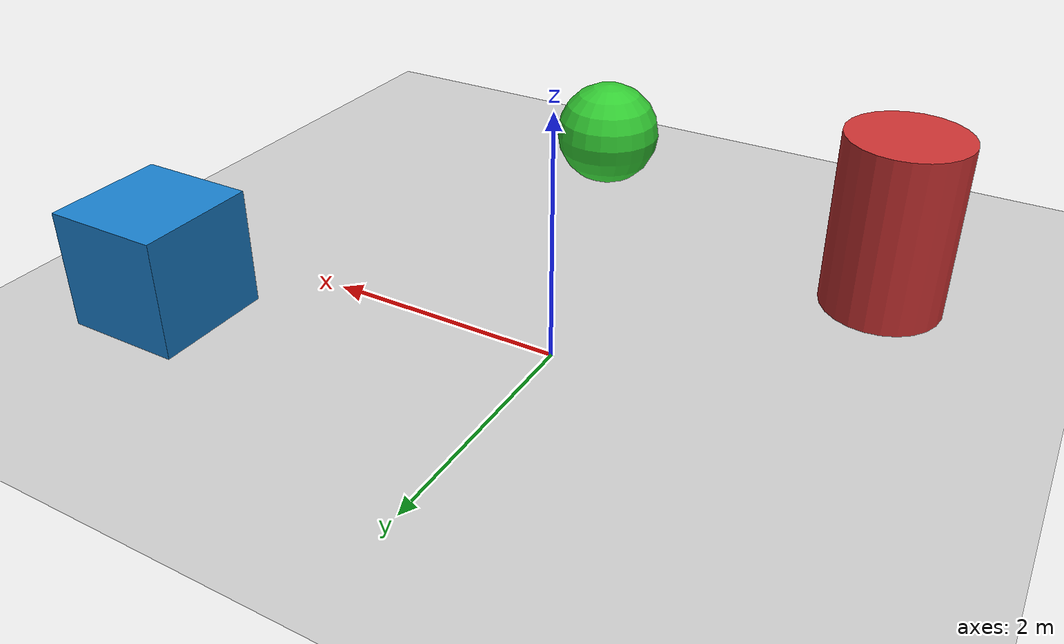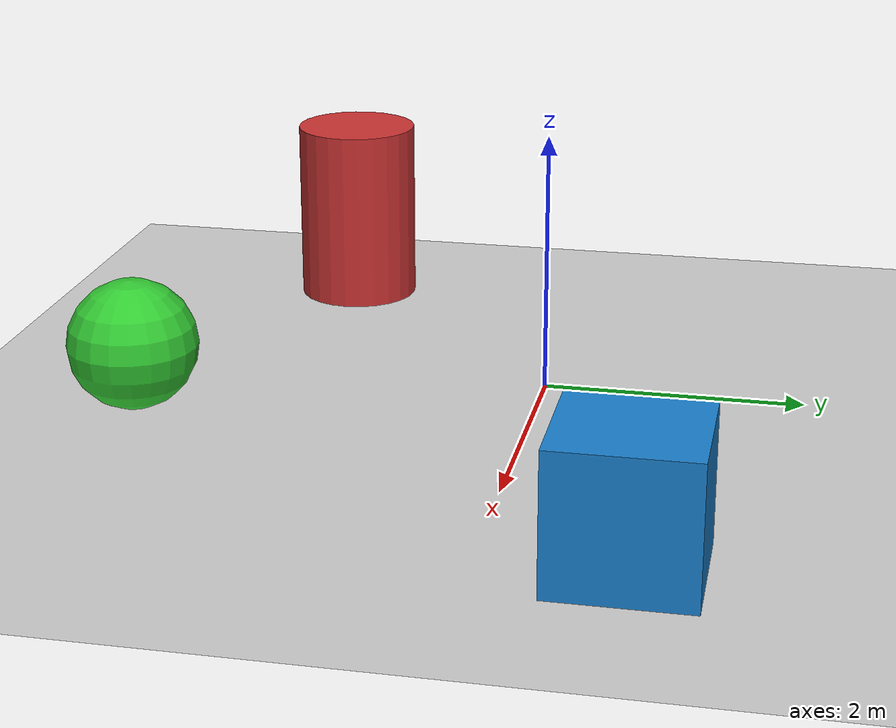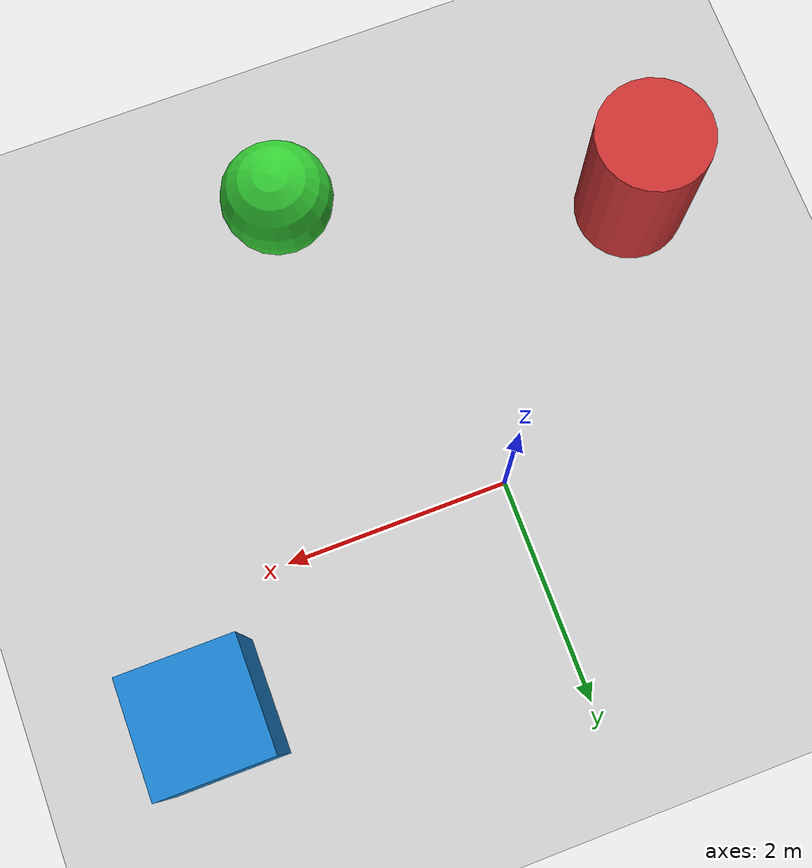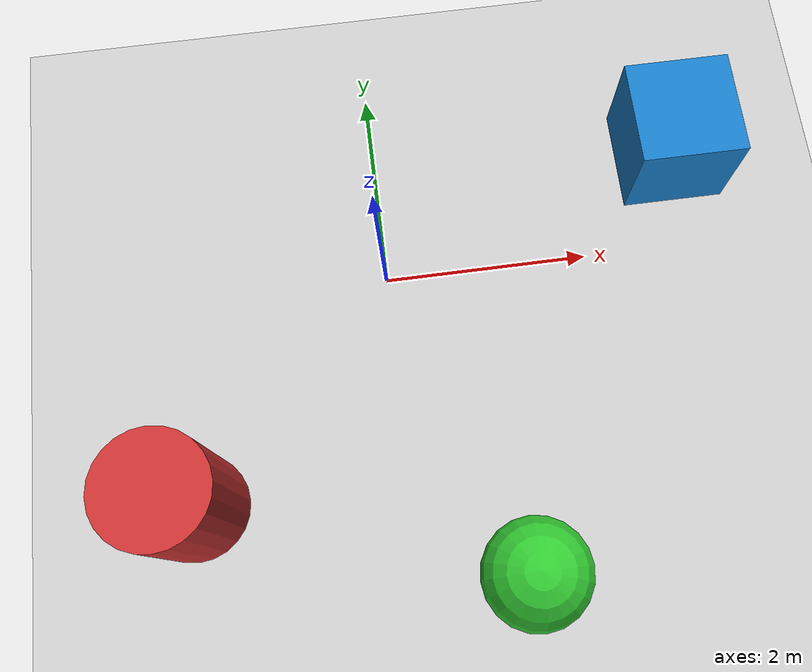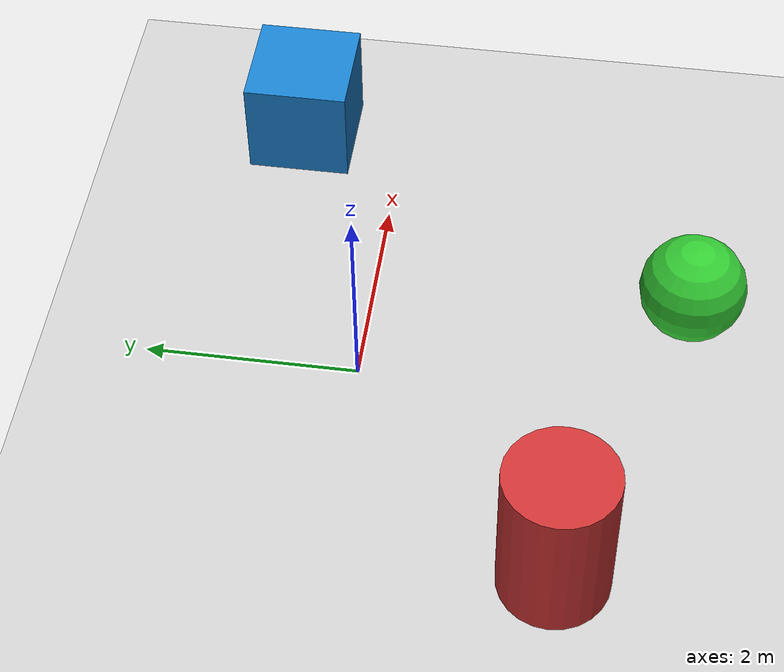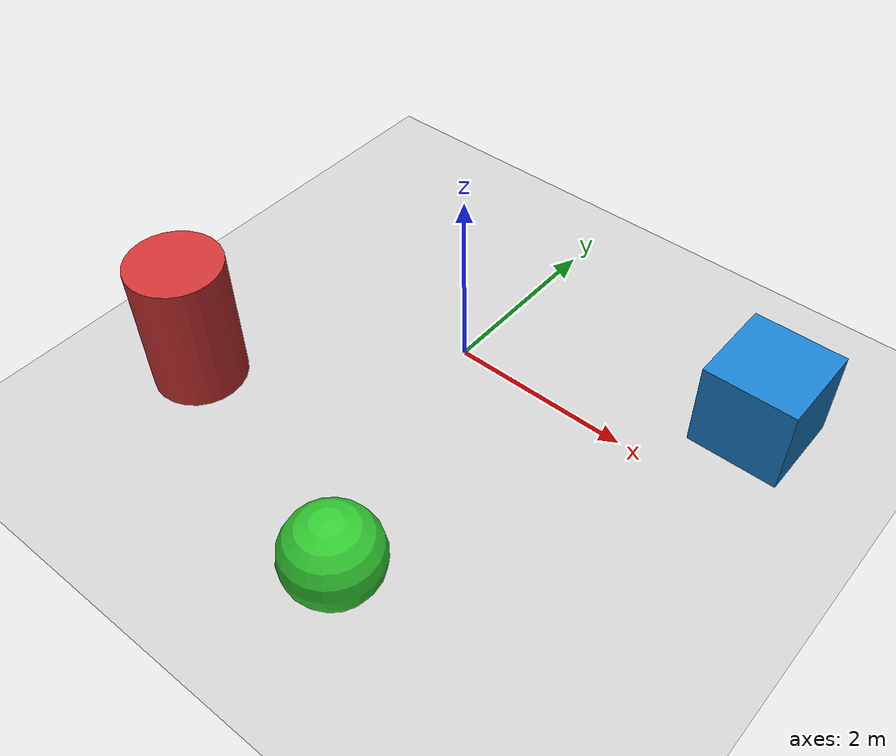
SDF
<?xml version="1.0" ?>
<sdf version="1.8">
  <world name="testing_world">
    <!-- Physics Plugin -->
    <plugin
      filename="gz-sim-physics-system"
      name="gz::sim::systems::Physics">
    </plugin>
    <!-- User Commands Plugin -->
    <plugin
      filename="gz-sim-user-commands-system"
      name="gz::sim::systems::UserCommands">
    </plugin>
    <!-- Scene Broadcaster Plugin -->
    <plugin
      filename="gz-sim-scene-broadcaster-system"
      name="gz::sim::systems::SceneBroadcaster">
    </plugin>

    <!-- Global light source -->
    <light type="directional" name="sun">
      <cast_shadows>true</cast_shadows>
      <pose>0 0 10 0 0 0</pose>
      <diffuse>0.8 0.8 0.8 1</diffuse>
      <specular>0.2 0.2 0.2 1</specular>
      <attenuation>
        <range>1000</range>
        <constant>0.9</constant>
        <linear>0.01</linear>
        <quadratic>0.001</quadratic>
      </attenuation>
      <direction>-0.5 0.1 -0.9</direction>
    </light>

    <!-- Ground Plane -->
    <model name="ground_plane">
      <static>true</static>
      <link name="link">
        <collision name="collision">
          <geometry>
            <plane>
              <normal>0 0 1</normal>
              <size>100 100</size>
            </plane>
          </geometry>
          <surface>
            <friction>
              <ode>
                <mu>100</mu>
                <mu2>50</mu2>
              </ode>
            </friction>
          </surface>
        </collision>
        <visual name="visual">
          <geometry>
            <plane>
              <normal>0 0 1</normal>
              <size>100 100</size>
            </plane>
          </geometry>
          <material>
            <ambient>0.8 0.8 0.8 1</ambient>
            <diffuse>0.8 0.8 0.8 1</diffuse>
            <specular>0.8 0.8 0.8 1</specular>
          </material>
        </visual>
      </link>
    </model>

    <!-- Obstacle 1: Box -->
    <model name="box_obstacle_1">
      <pose>3.0 1.0 0.5 0 0 0</pose>
      <static>true</static>
      <link name="link">
        <collision name="collision">
          <geometry>
            <box>
              <size>1.0 1.0 1.0</size>
            </box>
          </geometry>
        </collision>
        <visual name="visual">
          <geometry>
            <box>
              <size>1.0 1.0 1.0</size>
            </box>
          </geometry>
          <material>
            <ambient>0.1 0.5 0.8 1</ambient>
            <diffuse>0.1 0.5 0.8 1</diffuse>
            <specular>0.5 0.5 0.5 1</specular>
          </material>
        </visual>
      </link>
    </model>

    <!-- Obstacle 2: Cylinder -->
    <model name="cylinder_obstacle_1">
      <pose>-2.0 -2.0 0.75 0 0 0</pose>
      <static>true</static>
      <link name="link">
        <collision name="collision">
          <geometry>
            <cylinder>
              <radius>0.5</radius>
              <length>1.5</length>
            </cylinder>
          </geometry>
        </collision>
        <visual name="visual">
          <geometry>
            <cylinder>
              <radius>0.5</radius>
              <length>1.5</length>
            </cylinder>
          </geometry>
          <material>
            <ambient>0.8 0.2 0.2 1</ambient>
            <diffuse>0.8 0.2 0.2 1</diffuse>
            <specular>0.5 0.5 0.5 1</specular>
          </material>
        </visual>
      </link>
    </model>

    <!-- Obstacle 3: Sphere -->
    <model name="sphere_obstacle_1">
      <pose>1.0 -3.0 0.5 0 0 0</pose>
      <static>true</static>
      <link name="link">
        <collision name="collision">
          <geometry>
            <sphere>
              <radius>0.5</radius>
            </sphere>
          </geometry>
        </collision>
        <visual name="visual">
          <geometry>
            <sphere>
              <radius>0.5</radius>
            </sphere>
          </geometry>
          <material>
            <ambient>0.2 0.8 0.2 1</ambient>
            <diffuse>0.2 0.8 0.2 1</diffuse>
            <specular>0.5 0.5 0.5 1</specular>
          </material>
        </visual>
      </link>
    </model>

  </world>
</sdf>
